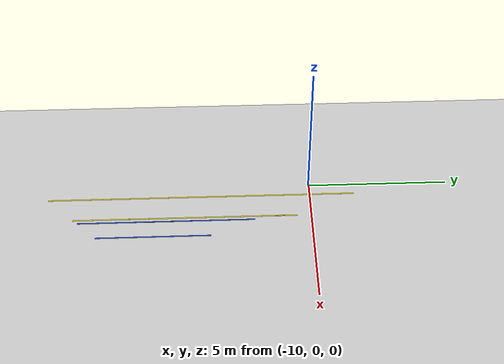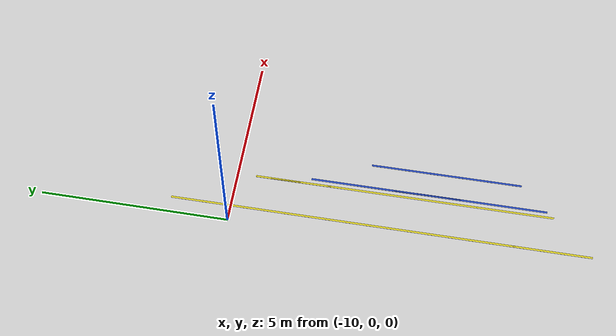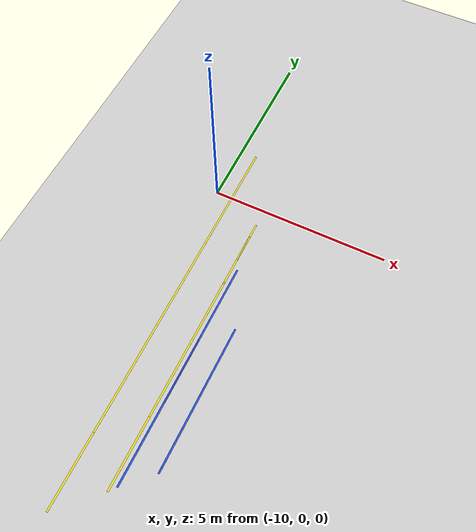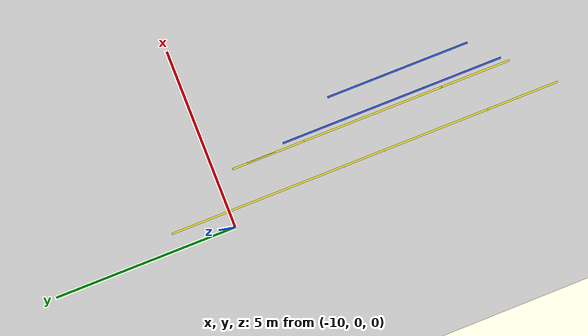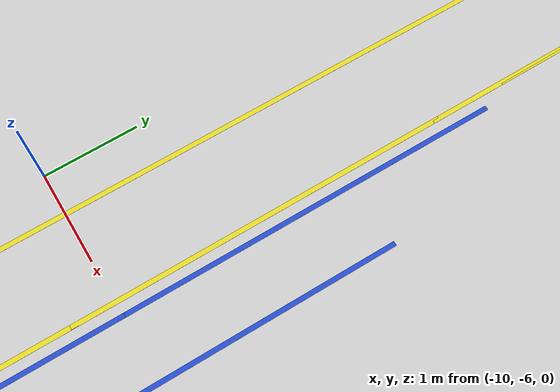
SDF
<sdf version="1.7">
 <world name="default">
  <model name="ground_plane">
   <static>1</static>
   <link name="link">
    <collision name="collision">
     <geometry><plane><normal>0 0 1</normal><size>100 100</size></plane></geometry>
     <surface>
      <contact><collide_bitmask>65535</collide_bitmask></contact>
      <friction><ode><mu>100</mu><mu2>50</mu2></ode></friction>
     </surface>
    </collision>
    <visual name="visual">
     <cast_shadows>0</cast_shadows>
     <geometry><plane><normal>0 0 1</normal><size>100 100</size></plane></geometry>
     <material>
      <script><uri>file://media/materials/scripts/gazebo.material</uri><name>Gazebo/Grey</name></script>
     </material>
    </visual>
   </link>
  </model>
  <model name="line2m">
   <link name="link_0">
    <inertial>
     <mass>1</mass>
     <inertia>
      <ixx>0.166667</ixx>
      <ixy>0</ixy>
      <ixz>0</ixz>
      <iyy>0.166667</iyy>
      <iyz>0</iyz>
      <izz>0.166667</izz>
     </inertia>
    </inertial>
    <visual name="visual">
     <geometry><box><size>2 0.05 0.001</size></box></geometry>
     <material>
      <lighting>1</lighting>
      <script><uri>file://media/materials/scripts/gazebo.material</uri><name>Gazebo/Yellow</name></script>
     </material>
    </visual>
    <collision name="collision">
     <geometry><box><size>2 0.05 1e-05</size></box></geometry>
     <surface>
      <friction>
       <ode><mu>1</mu><mu2>1</mu2><fdir1>0 0 0</fdir1><slip1>0</slip1><slip2>0</slip2></ode>
       <torsional>
        <coefficient>1</coefficient>
        <patch_radius>0</patch_radius>
        <surface_radius>0</surface_radius>
        <use_patch_radius>1</use_patch_radius>
        <ode><slip>0</slip></ode>
       </torsional>
      </friction>
      <bounce><restitution_coefficient>0</restitution_coefficient><threshold>1e+06</threshold></bounce>
      <contact>
       <collide_without_contact>0</collide_without_contact>
       <collide_without_contact_bitmask>1</collide_without_contact_bitmask>
       <collide_bitmask>1</collide_bitmask>
       <ode>
        <soft_cfm>0</soft_cfm>
        <soft_erp>0.2</soft_erp>
        <kp>1e+13</kp>
        <kd>1</kd>
        <max_vel>0.01</max_vel>
        <min_depth>0</min_depth>
       </ode>
       <bullet>
        <split_impulse>1</split_impulse>
        <split_impulse_penetration_threshold>-0.01</split_impulse_penetration_threshold>
        <soft_cfm>0</soft_cfm>
        <soft_erp>0.2</soft_erp>
        <kp>1e+13</kp>
        <kd>1</kd>
       </bullet>
      </contact>
     </surface>
    </collision>
   </link>
   <static>1</static>
   <pose>-9.55 -8.345 0 0 -0 1.571</pose>
  </model>
  <model name="line2m_clone">
   <link name="link_0">
    <inertial>
     <mass>1</mass>
     <inertia>
      <ixx>0.166667</ixx>
      <ixy>0</ixy>
      <ixz>0</ixz>
      <iyy>0.166667</iyy>
      <iyz>0</iyz>
      <izz>0.166667</izz>
     </inertia>
    </inertial>
    <visual name="visual">
     <geometry><box><size>2 0.05 0.001</size></box></geometry>
     <material>
      <lighting>1</lighting>
      <script><uri>file://media/materials/scripts/gazebo.material</uri><name>Gazebo/Yellow</name></script>
     </material>
    </visual>
    <collision name="collision">
     <geometry><box><size>2 0.05 1e-05</size></box></geometry>
     <surface>
      <friction>
       <ode><mu>1</mu><mu2>1</mu2><fdir1>0 0 0</fdir1><slip1>0</slip1><slip2>0</slip2></ode>
       <torsional>
        <coefficient>1</coefficient>
        <patch_radius>0</patch_radius>
        <surface_radius>0</surface_radius>
        <use_patch_radius>1</use_patch_radius>
        <ode><slip>0</slip></ode>
       </torsional>
      </friction>
      <bounce><restitution_coefficient>0</restitution_coefficient><threshold>1e+06</threshold></bounce>
      <contact>
       <collide_without_contact>0</collide_without_contact>
       <collide_without_contact_bitmask>1</collide_without_contact_bitmask>
       <collide_bitmask>1</collide_bitmask>
       <ode>
        <soft_cfm>0</soft_cfm>
        <soft_erp>0.2</soft_erp>
        <kp>1e+13</kp>
        <kd>1</kd>
        <max_vel>0.01</max_vel>
        <min_depth>0</min_depth>
       </ode>
       <bullet>
        <split_impulse>1</split_impulse>
        <split_impulse_penetration_threshold>-0.01</split_impulse_penetration_threshold>
        <soft_cfm>0</soft_cfm>
        <soft_erp>0.2</soft_erp>
        <kp>1e+13</kp>
        <kd>1</kd>
       </bullet>
      </contact>
     </surface>
    </collision>
   </link>
   <static>1</static>
   <pose>-8.55 -7.37342 0 0 -0 1.571</pose>
  </model>
  <model name="line9m_6_clone">
   <link name="link_1">
    <inertial>
     <mass>1</mass>
     <inertia>
      <ixx>0.166667</ixx>
      <ixy>0</ixy>
      <ixz>0</ixz>
      <iyy>0.166667</iyy>
      <iyz>0</iyz>
      <izz>0.166667</izz>
     </inertia>
    </inertial>
    <visual name="visual">
     <geometry><box><size>9 0.05 0.001</size></box></geometry>
     <material>
      <lighting>1</lighting>
      <script><uri>file://media/materials/scripts/gazebo.material</uri><name>Gazebo/Yellow</name></script>
     </material>
    </visual>
    <collision name="collision">
     <geometry><box><size>9 0.05 0.001</size></box></geometry>
     <surface>
      <friction>
       <ode><mu>1</mu><mu2>1</mu2><fdir1>0 0 0</fdir1><slip1>0</slip1><slip2>0</slip2></ode>
       <torsional>
        <coefficient>1</coefficient>
        <patch_radius>0</patch_radius>
        <surface_radius>0</surface_radius>
        <use_patch_radius>1</use_patch_radius>
        <ode><slip>0</slip></ode>
       </torsional>
      </friction>
      <bounce><restitution_coefficient>0</restitution_coefficient><threshold>1e+06</threshold></bounce>
      <contact>
       <collide_without_contact>0</collide_without_contact>
       <collide_without_contact_bitmask>1</collide_without_contact_bitmask>
       <collide_bitmask>1</collide_bitmask>
       <ode>
        <soft_cfm>0</soft_cfm>
        <soft_erp>0.2</soft_erp>
        <kp>1e+13</kp>
        <kd>1</kd>
        <max_vel>0.01</max_vel>
        <min_depth>0</min_depth>
       </ode>
       <bullet>
        <split_impulse>1</split_impulse>
        <split_impulse_penetration_threshold>-0.01</split_impulse_penetration_threshold>
        <soft_cfm>0</soft_cfm>
        <soft_erp>0.2</soft_erp>
        <kp>1e+13</kp>
        <kd>1</kd>
       </bullet>
      </contact>
     </surface>
    </collision>
   </link>
   <static>1</static>
   <pose>-9.55 -2.89705 0 0 -0 1.571</pose>
  </model>
  <model name="line4m_6">
   <link name="link_3">
    <inertial>
     <mass>1</mass>
     <inertia>
      <ixx>0.166667</ixx>
      <ixy>0</ixy>
      <ixz>0</ixz>
      <iyy>0.166667</iyy>
      <iyz>0</iyz>
      <izz>0.166667</izz>
     </inertia>
    </inertial>
    <visual name="visual">
     <geometry><box><size>0.05 4 0.001</size></box></geometry>
     <material>
      <lighting>1</lighting>
      <script><uri>file://media/materials/scripts/gazebo.material</uri><name>Gazebo/Blue</name></script>
     </material>
    </visual>
    <collision name="collision">
     <geometry><box><size>0.05 4 1e-06</size></box></geometry>
     <surface>
      <friction>
       <ode><mu>1</mu><mu2>1</mu2><fdir1>0 0 0</fdir1><slip1>0</slip1><slip2>0</slip2></ode>
       <torsional>
        <coefficient>1</coefficient>
        <patch_radius>0</patch_radius>
        <surface_radius>0</surface_radius>
        <use_patch_radius>1</use_patch_radius>
        <ode><slip>0</slip></ode>
       </torsional>
      </friction>
      <bounce><restitution_coefficient>0</restitution_coefficient><threshold>1e+06</threshold></bounce>
      <contact>
       <collide_without_contact>0</collide_without_contact>
       <collide_without_contact_bitmask>1</collide_without_contact_bitmask>
       <collide_bitmask>1</collide_bitmask>
       <ode>
        <soft_cfm>0</soft_cfm>
        <soft_erp>0.2</soft_erp>
        <kp>1e+13</kp>
        <kd>1</kd>
        <max_vel>0.01</max_vel>
        <min_depth>0</min_depth>
       </ode>
       <bullet>
        <split_impulse>1</split_impulse>
        <split_impulse_penetration_threshold>-0.01</split_impulse_penetration_threshold>
        <soft_cfm>0</soft_cfm>
        <soft_erp>0.2</soft_erp>
        <kp>1e+13</kp>
        <kd>1</kd>
       </bullet>
      </contact>
     </surface>
    </collision>
   </link>
   <static>1</static>
   <pose>-8.4 -3.97754 0 0 -0 0</pose>
  </model>
  <model name="line4m_7">
   <link name="link_3">
    <inertial>
     <mass>1</mass>
     <inertia>
      <ixx>0.166667</ixx>
      <ixy>0</ixy>
      <ixz>0</ixz>
      <iyy>0.166667</iyy>
      <iyz>0</iyz>
      <izz>0.166667</izz>
     </inertia>
    </inertial>
    <visual name="visual">
     <geometry><box><size>0.05 4 0.001</size></box></geometry>
     <material>
      <lighting>1</lighting>
      <script><uri>file://media/materials/scripts/gazebo.material</uri><name>Gazebo/Blue</name></script>
     </material>
    </visual>
    <collision name="collision">
     <geometry><box><size>0.05 4 1e-06</size></box></geometry>
     <surface>
      <friction>
       <ode><mu>1</mu><mu2>1</mu2><fdir1>0 0 0</fdir1><slip1>0</slip1><slip2>0</slip2></ode>
       <torsional>
        <coefficient>1</coefficient>
        <patch_radius>0</patch_radius>
        <surface_radius>0</surface_radius>
        <use_patch_radius>1</use_patch_radius>
        <ode><slip>0</slip></ode>
       </torsional>
      </friction>
      <bounce><restitution_coefficient>0</restitution_coefficient><threshold>1e+06</threshold></bounce>
      <contact>
       <collide_without_contact>0</collide_without_contact>
       <collide_without_contact_bitmask>1</collide_without_contact_bitmask>
       <collide_bitmask>1</collide_bitmask>
       <ode>
        <soft_cfm>0</soft_cfm>
        <soft_erp>0.2</soft_erp>
        <kp>1e+13</kp>
        <kd>1</kd>
        <max_vel>0.01</max_vel>
        <min_depth>0</min_depth>
       </ode>
       <bullet>
        <split_impulse>1</split_impulse>
        <split_impulse_penetration_threshold>-0.01</split_impulse_penetration_threshold>
        <soft_cfm>0</soft_cfm>
        <soft_erp>0.2</soft_erp>
        <kp>1e+13</kp>
        <kd>1</kd>
       </bullet>
      </contact>
     </surface>
    </collision>
   </link>
   <static>1</static>
   <pose>-8.4 -6.19248 0 0 -0 0</pose>
  </model>
  <model name="line4m_8">
   <link name="link_3">
    <inertial>
     <mass>1</mass>
     <inertia>
      <ixx>0.166667</ixx>
      <ixy>0</ixy>
      <ixz>0</ixz>
      <iyy>0.166667</iyy>
      <iyz>0</iyz>
      <izz>0.166667</izz>
     </inertia>
    </inertial>
    <visual name="visual">
     <geometry><box><size>0.05 4 0.001</size></box></geometry>
     <material>
      <lighting>1</lighting>
      <script><uri>file://media/materials/scripts/gazebo.material</uri><name>Gazebo/Blue</name></script>
     </material>
    </visual>
    <collision name="collision">
     <geometry><box><size>0.05 4 1e-06</size></box></geometry>
     <surface>
      <friction>
       <ode><mu>1</mu><mu2>1</mu2><fdir1>0 0 0</fdir1><slip1>0</slip1><slip2>0</slip2></ode>
       <torsional>
        <coefficient>1</coefficient>
        <patch_radius>0</patch_radius>
        <surface_radius>0</surface_radius>
        <use_patch_radius>1</use_patch_radius>
        <ode><slip>0</slip></ode>
       </torsional>
      </friction>
      <bounce><restitution_coefficient>0</restitution_coefficient><threshold>1e+06</threshold></bounce>
      <contact>
       <collide_without_contact>0</collide_without_contact>
       <collide_without_contact_bitmask>1</collide_without_contact_bitmask>
       <collide_bitmask>1</collide_bitmask>
       <ode>
        <soft_cfm>0</soft_cfm>
        <soft_erp>0.2</soft_erp>
        <kp>1e+13</kp>
        <kd>1</kd>
        <max_vel>0.01</max_vel>
        <min_depth>0</min_depth>
       </ode>
       <bullet>
        <split_impulse>1</split_impulse>
        <split_impulse_penetration_threshold>-0.01</split_impulse_penetration_threshold>
        <soft_cfm>0</soft_cfm>
        <soft_erp>0.2</soft_erp>
        <kp>1e+13</kp>
        <kd>1</kd>
       </bullet>
      </contact>
     </surface>
    </collision>
   </link>
   <static>1</static>
   <pose>-7.7 -5.52029 0 0 -0 0</pose>
  </model>
  <model name="line4m_32">
   <link name="link_3">
    <inertial>
     <mass>1</mass>
     <inertia>
      <ixx>0.166667</ixx>
      <ixy>0</ixy>
      <ixz>0</ixz>
      <iyy>0.166667</iyy>
      <iyz>0</iyz>
      <izz>0.166667</izz>
     </inertia>
    </inertial>
    <visual name="visual">
     <geometry><box><size>0.05 4 0.001</size></box></geometry>
     <material>
      <lighting>1</lighting>
      <script><uri>file://media/materials/scripts/gazebo.material</uri><name>Gazebo/Yellow</name></script>
     </material>
    </visual>
    <collision name="collision">
     <geometry><box><size>0.05 4 1e-06</size></box></geometry>
     <surface>
      <friction>
       <ode><mu>1</mu><mu2>1</mu2><fdir1>0 0 0</fdir1><slip1>0</slip1><slip2>0</slip2></ode>
       <torsional>
        <coefficient>1</coefficient>
        <patch_radius>0</patch_radius>
        <surface_radius>0</surface_radius>
        <use_patch_radius>1</use_patch_radius>
        <ode><slip>0</slip></ode>
       </torsional>
      </friction>
      <bounce><restitution_coefficient>0</restitution_coefficient><threshold>1e+06</threshold></bounce>
      <contact>
       <collide_without_contact>0</collide_without_contact>
       <collide_without_contact_bitmask>1</collide_without_contact_bitmask>
       <collide_bitmask>1</collide_bitmask>
       <ode>
        <soft_cfm>0</soft_cfm>
        <soft_erp>0.2</soft_erp>
        <kp>1e+13</kp>
        <kd>1</kd>
        <max_vel>0.01</max_vel>
        <min_depth>0</min_depth>
       </ode>
       <bullet>
        <split_impulse>1</split_impulse>
        <split_impulse_penetration_threshold>-0.01</split_impulse_penetration_threshold>
        <soft_cfm>0</soft_cfm>
        <soft_erp>0.2</soft_erp>
        <kp>1e+13</kp>
        <kd>1</kd>
       </bullet>
      </contact>
     </surface>
    </collision>
   </link>
   <static>1</static>
   <pose>-8.55 -4.44591 0 0 -0 0</pose>
  </model>
  <model name="line160cm_0">
   <link name="link_1">
    <inertial>
     <mass>1</mass>
     <inertia>
      <ixx>0.166667</ixx>
      <ixy>0</ixy>
      <ixz>0</ixz>
      <iyy>0.166667</iyy>
      <iyz>0</iyz>
      <izz>0.166667</izz>
     </inertia>
    </inertial>
    <visual name="visual">
     <geometry><box><size>1.6 0.05 0.001</size></box></geometry>
     <material>
      <script><uri>file://media/materials/scripts/gazebo.material</uri><name>Gazebo/Yellow</name></script>
     </material>
    </visual>
    <collision name="collision">
     <geometry><box><size>1.6 0.05 1e-05</size></box></geometry>
     <surface>
      <friction>
       <ode><mu>1</mu><mu2>1</mu2><fdir1>0 0 0</fdir1><slip1>0</slip1><slip2>0</slip2></ode>
       <torsional>
        <coefficient>1</coefficient>
        <patch_radius>0</patch_radius>
        <surface_radius>0</surface_radius>
        <use_patch_radius>1</use_patch_radius>
        <ode><slip>0</slip></ode>
       </torsional>
      </friction>
      <bounce><restitution_coefficient>0</restitution_coefficient><threshold>1e+06</threshold></bounce>
      <contact>
       <collide_without_contact>0</collide_without_contact>
       <collide_without_contact_bitmask>1</collide_without_contact_bitmask>
       <collide_bitmask>1</collide_bitmask>
       <ode>
        <soft_cfm>0</soft_cfm>
        <soft_erp>0.2</soft_erp>
        <kp>1e+13</kp>
        <kd>1</kd>
        <max_vel>0.01</max_vel>
        <min_depth>0</min_depth>
       </ode>
       <bullet>
        <split_impulse>1</split_impulse>
        <split_impulse_penetration_threshold>-0.01</split_impulse_penetration_threshold>
        <soft_cfm>0</soft_cfm>
        <soft_erp>0.2</soft_erp>
        <kp>1e+13</kp>
        <kd>1</kd>
       </bullet>
      </contact>
     </surface>
    </collision>
   </link>
   <static>1</static>
   <pose>-8.54997 -1.70853 0 0 -0 1.571</pose>
  </model>
  <model name="line120cm_14">
   <link name="link_1">
    <inertial>
     <mass>1</mass>
     <inertia>
      <ixx>0.166667</ixx>
      <ixy>0</ixy>
      <ixz>0</ixz>
      <iyy>0.166667</iyy>
      <iyz>0</iyz>
      <izz>0.166667</izz>
     </inertia>
    </inertial>
    <visual name="visual">
     <geometry><box><size>1.2 0.05 0.001</size></box></geometry>
     <material>
      <script><uri>file://media/materials/scripts/gazebo.material</uri><name>Gazebo/Yellow</name></script>
     </material>
    </visual>
    <collision name="collision">
     <geometry><box><size>1.2 0.05 1e-05</size></box></geometry>
     <surface>
      <friction>
       <ode><mu>1</mu><mu2>1</mu2><fdir1>0 0 0</fdir1><slip1>0</slip1><slip2>0</slip2></ode>
       <torsional>
        <coefficient>1</coefficient>
        <patch_radius>0</patch_radius>
        <surface_radius>0</surface_radius>
        <use_patch_radius>1</use_patch_radius>
        <ode><slip>0</slip></ode>
       </torsional>
      </friction>
      <bounce><restitution_coefficient>0</restitution_coefficient><threshold>1e+06</threshold></bounce>
      <contact>
       <collide_without_contact>0</collide_without_contact>
       <collide_without_contact_bitmask>1</collide_without_contact_bitmask>
       <collide_bitmask>1</collide_bitmask>
       <ode>
        <soft_cfm>0</soft_cfm>
        <soft_erp>0.2</soft_erp>
        <kp>1e+13</kp>
        <kd>1</kd>
        <max_vel>0.01</max_vel>
        <min_depth>0</min_depth>
       </ode>
       <bullet>
        <split_impulse>1</split_impulse>
        <split_impulse_penetration_threshold>-0.01</split_impulse_penetration_threshold>
        <soft_cfm>0</soft_cfm>
        <soft_erp>0.2</soft_erp>
        <kp>1e+13</kp>
        <kd>1</kd>
       </bullet>
      </contact>
     </surface>
    </collision>
   </link>
   <static>1</static>
   <pose>-8.55019 -1.09329 0 0 -0 1.571</pose>
  </model>
 </world>
</sdf>
